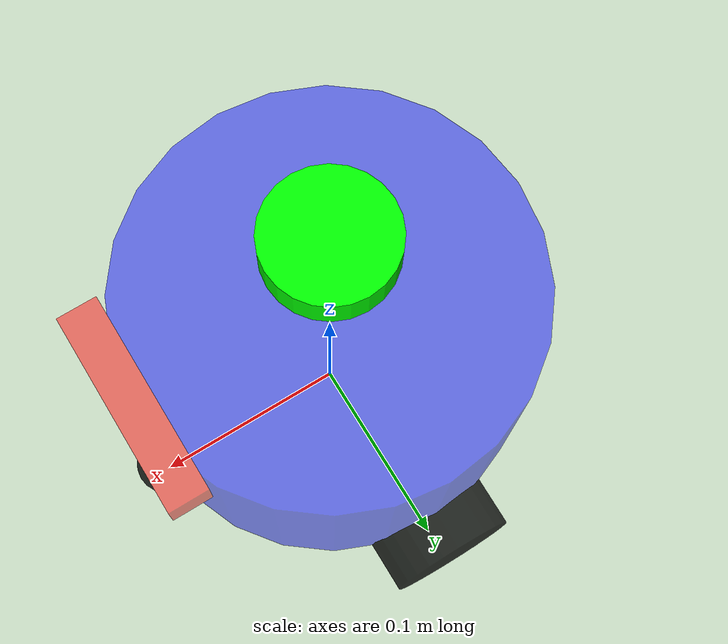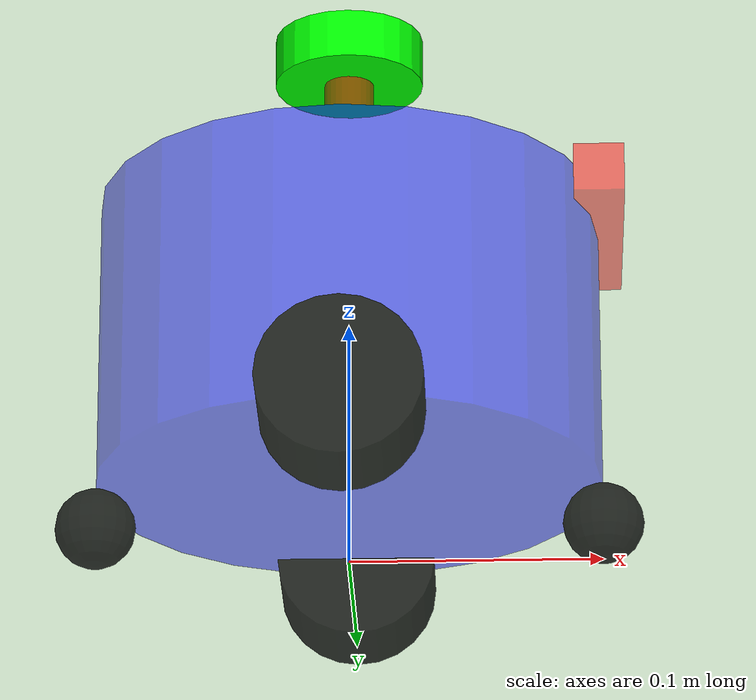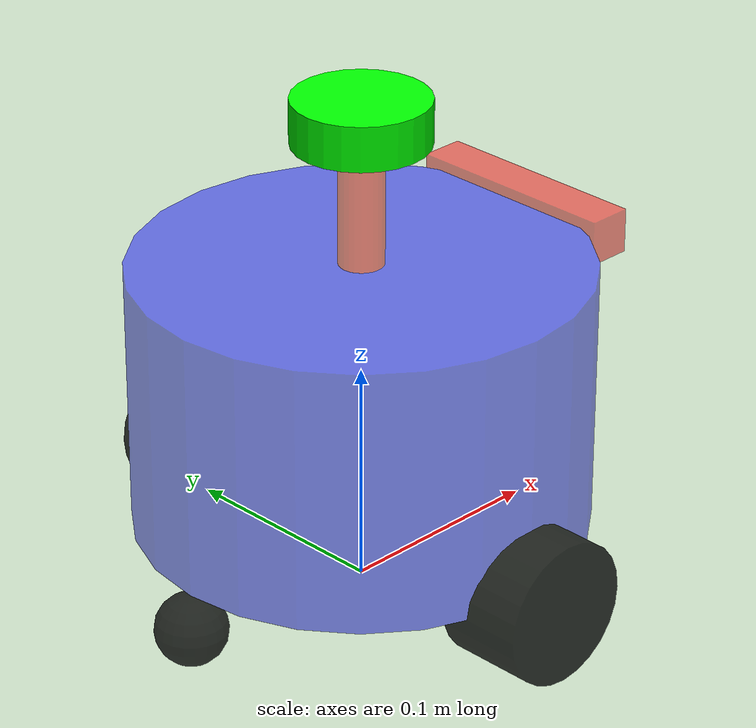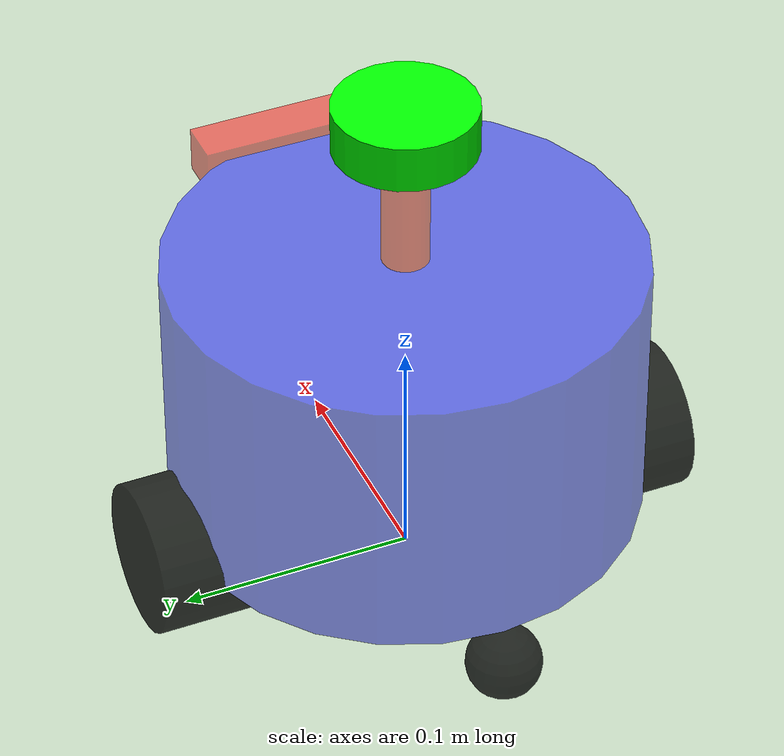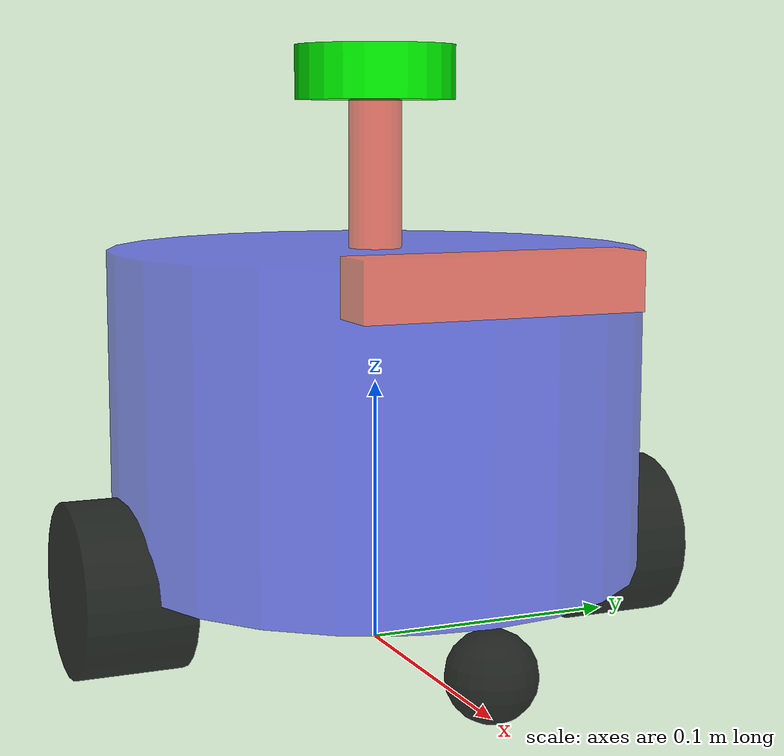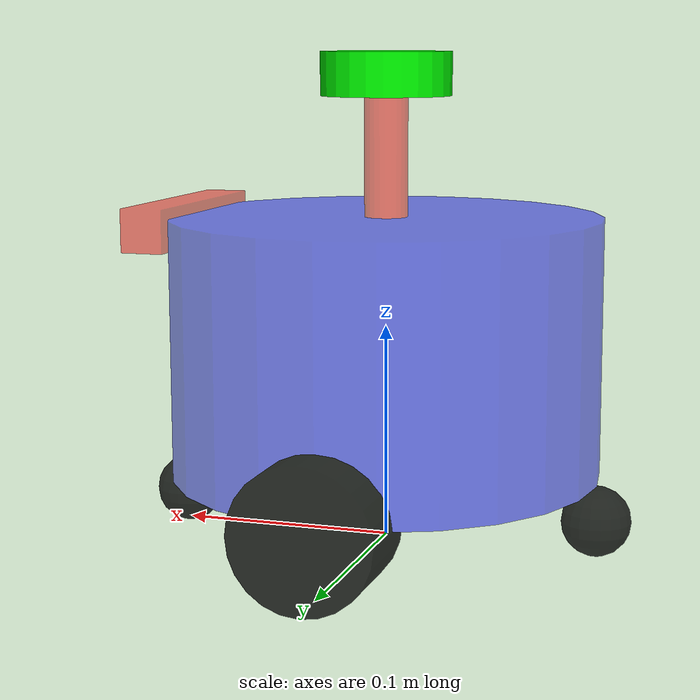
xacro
<?xml version="1.0"?>
<robot xmlns:xacro="http://www.ros.org/wiki/xacro"  name = "my_robot">

  <!--包含身体部分的xacro文件-->
  <xacro:include filename="$(find robo_sim)/urdf/my_robot/base.urdf.xacro"/>
  <!--包含激光传感器部分的xacro文件-->
  <xacro:include filename="$(find robo_sim)/urdf/my_robot/sensor/laser.urdf.xacro"/>
  <!--包含IMU传感器部分的xacro文件-->
  <xacro:include filename="$(find robo_sim)/urdf/my_robot/sensor/imu.urdf.xacro"/>
  <!--包含摄像头传感器部分的xacro文件-->
  <xacro:include filename="$(find robo_sim)/urdf/my_robot/sensor/camera.urdf.xacro"/>
  <!--包含轮子部分的xacro文件-->
  <xacro:include filename="$(find robo_sim)/urdf/my_robot/actuator/wheel.urdf.xacro"/>
  <!--包含万向轮部分的xacro文件-->
  <xacro:include filename="$(find robo_sim)/urdf/my_robot/actuator/caster.urdf.xacro"/>
  <!--包含Gazebo控制插件的xacro文件-->
  <xacro:include filename = "$(find robo_sim)/urdf/plugins/gazebo_control_plugins.xacro"/>
  <!--包含Gazebo传感器插件的xacro文件-->
  <xacro:include filename = "$(find robo_sim)/urdf/plugins/gazebo_sensor_plugins.xacro"/>
  <!--包含ros_control相关的xacro文件-->

  <!--实例化身体部分--><!--调用宏-->
  <xacro:base_xacro length="0.12" radius="0.1" mass="1.0"/>
  <!--实例化激光传感器部分，指定位置参数-->
  <xacro:laser_xacro xyz="0.0 0.0 0.075"/>
  <!--实例化IMU传感器部分，指定位置参数-->
  <xacro:imu_xacro xyz="0.0 0.0 0.02"/>
  <!--实例化摄像头传感器部分，指定位置参数-->
  <xacro:camera_xacro xyz="0.10 0.0 0.055"/>
  <!--实例化轮子部分，指定位置参数-->
  <xacro:wheel_xacro wheel_name="left_wheel" xyz="0.0 0.10 -0.06"/><!--左轮  -0.06-->
  <xacro:wheel_xacro wheel_name="right_wheel" xyz="0.0 -0.10 -0.06"/>
  <!--实例化万向轮部分，指定位置参数-->
  <xacro:caster_xacro caster_name="front_caster" xyz="0.10 0.0 -0.076"/>
  <xacro:caster_xacro caster_name="rear_caster" xyz="-0.10 0.0 -0.076"/>

  <!--实例化Gazebo控制插件 -->
  <xacro:gazebo_control_plugin />

  <!--实例化Gazebo传感器插件 -->
  <xacro:gazebo_sensor_plugin />

  <!--实例化ros_control相关的内容 -->

  </robot>

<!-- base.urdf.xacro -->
<robot xmlns:xacro="http://www.ros.org/wiki/xacro" >

<!--包含惯性计算的xacro文件-->
<xacro:include filename="$(find robo_sim)/urdf/common_inertial.xacro"/>

<!--机器人的身体部分-->
<!-- This is a simple URDF file for a robot with a single link called "base_link". -->
<xacro:macro name = "base_xacro" params = "length radius mass">
<link name = "base_footprint"/>

<link name="base_link">
  <visual>  <!--外观-->
    <!--沿着自己几何中心的偏移和旋转量-->
    <origin xyz="0 0 0" rpy="0 0 0"/>
    <!--定义几何形状-->
    <geometry>
      <cylinder radius="${radius}" length="${length}"/>  <!--圆柱体-->
    </geometry>
    <!--定义材质-->
    <material name="blue">
      <color rgba="0 0 1 0.5"/>  <!--蓝色(rgb)，半透明(0.5)-->
    </material>
  </visual>
  <collision>  <!--碰撞模型-->
    <origin xyz="0 0 0" rpy="0 0 0"/>
    <geometry>
      <cylinder radius="${radius}" length="${length}"/>
    </geometry>
  </collision>
  <!--inertial-->  <!--惯性属性-->  <!--质量--> <!--惯性矩阵-->
  <!--/inertial-->

  <!--使用xacro文件中的惯性计算宏，传入质量、半径和长度参数-->
   <xacro:cylinder_inertia m="${mass}" r="${radius}" h="${length}"/>
</link>

<!--连接两个链接的关节-->
<joint name="base_joint" type="fixed">
  <parent link="base_footprint"/>
  <child link="base_link"/>
  <origin xyz="0 0 ${length/2+0.032-0.001}" rpy="0 0 0"/>
</joint>
<gazebo reference = "base_link">
    <material>
      Gazebo/PurpleGlow
    </material>
</gazebo>
</xacro:macro>

</robot>

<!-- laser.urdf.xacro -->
<robot xmlns:xacro="http://www.ros.org/wiki/xacro" >

<xacro:macro name="laser_xacro" params="xyz">
  <link name="laser_cylinder_link">
    <visual>
      <origin xyz="0 0 0" rpy="0 0 0"/>
      <geometry><cylinder radius="0.01" length="0.10"/></geometry>
      <material name="red"><color rgba="1 0 0 0.5"/></material>
    </visual>
    <collision>
      <origin xyz="0 0 0" rpy="0 0 0"/>
      <geometry><cylinder radius="0.01" length="0.10"/></geometry>
    </collision>
    <xacro:cylinder_inertia m="0.05" r="0.01" h="0.10"/>
  </link>

  <link name="laser_link">
    <visual>
      <origin xyz="0 0 0" rpy="0 0 0"/>
      <geometry><cylinder radius="0.03" length="0.02"/></geometry>
      <material name="green"><color rgba="0 1 0 1.0"/></material>
    </visual>
    <collision>
      <origin xyz="0 0 0" rpy="0 0 0"/>
      <geometry><cylinder radius="0.03" length="0.02"/></geometry>
    </collision>
    <xacro:cylinder_inertia m="0.10" r="0.03" h="0.02"/>
  </link>

  <!-- 激光支撑杆与激光中心固定 -->
  <joint name="laser_cylinder_joint" type="fixed">
    <parent link="base_link"/>
    <child link="laser_cylinder_link"/>
    <origin xyz="${xyz}" rpy="0 0 0"/>
  </joint>

  <joint name="laser_joint" type="fixed">
    <parent link="laser_cylinder_link"/>
    <child link="laser_link"/>
    <origin xyz="0 0 0.05" rpy="0 0 0"/>
  </joint>

  <!-- Gazebo visual -->
  <gazebo reference="laser_link"><material>Gazebo/Black</material></gazebo>
  <gazebo reference="laser_cylinder_link"><material>Gazebo/Black</material></gazebo>
</xacro:macro>

</robot>

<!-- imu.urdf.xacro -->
<robot xmlns:xacro="http://www.ros.org/wiki/xacro" >

<!--包含惯性计算的xacro文件-->
<xacro:include filename="$(find robo_sim)/urdf/common_inertial.xacro"/>
  <!--机器人的IMU部分，惯性测量传感器-->
  <xacro:macro name = "imu_xacro" params = "xyz">
  <link name="imu_link">
    <visual>
      <origin xyz="0 0 0" rpy="0 0 0"/> <!--沿着自己几何中心的偏移和旋转量-->
      <geometry>
        <box size="0.02 0.02 0.02"/>  <!--立方体-->
      </geometry>
      <material name="red">
        <color rgba="1 0 0 0.5"/>  <!--红色(rgb)，半透明(0.5)-->
      </material>
    </visual>
    <collision>
      <origin xyz="0 0 0" rpy="0 0 0"/>
      <geometry>
        <box size="0.02 0.02 0.02"/>
      </geometry>
    </collision>
    <!--使用xacro文件中的惯性计算宏，传入质量和立方体边长参数-->
    <xacro:box_inertia m="0.005" w="0.02" h="0.02" d="0.02"/>
   </link>

   <!--连接两个链接的关节-->
    <joint name="imu_joint" type="fixed">
      <parent link="base_link"/>  <!--父链接-->
      <child link="imu_link"/>  <!--子链接-->
    <origin xyz="${xyz}" rpy="0 0 0"/>  <!--关节位置-->
    </joint>
</xacro:macro>

</robot>

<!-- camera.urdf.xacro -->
<robot xmlns:xacro="http://www.ros.org/wiki/xacro" >

<!--包含惯性计算的xacro文件-->
<xacro:include filename="$(find robo_sim)/urdf/common_inertial.xacro"/>

  <!--机器人的camera部分-->
  <xacro:macro name = "camera_xacro" params = "xyz">
  <link name="camera_link">
    <visual>
      <origin xyz="0 0 0" rpy="0 0 0"/> <!--沿着自己几何中心的偏移和旋转量-->
      <geometry>
        <box size="0.02 0.10 0.02"/>  <!--立方体-->
      </geometry>
      <material name="red">
        <color rgba="1 0 0 0.5"/>  <!--红色(rgb)，半透明(0.5)-->
      </material>
    </visual>
    <collision>
      <origin xyz="0 0 0" rpy="0 0 0"/>
      <geometry>
        <box size="0.02 0.10 0.02"/>
      </geometry>
    </collision>
    <!--使用xacro文件中的惯性计算宏，传入质量和立方体边长参数-->
    <xacro:box_inertia m="0.1" w="0.02" h="0.10" d="0.02"/>

   </link>

<link name="camera_optical_link"></link>

   <!--连接两个链接的关节-->
    <joint name="camera_joint" type="fixed">
      <parent link="base_link"/>  <!--父链接-->
      <child link="camera_link"/>  <!--子链接-->
    <origin xyz="${xyz}" rpy="0 0 0"/>  <!--关节位置-->
    </joint>

    <joint name="camera_optical_joint" type="fixed">
      <parent link="camera_link"/>
      <child link="camera_optical_link"/>
      <origin xyz="0 0 0" rpy="${-pi/2} 0 ${-pi/2}"/>  <!--相对于camera_link的偏移和旋转，调整为相机光轴朝前-->

    </joint>

    <gazebo reference = "camera_link">
    <material>
      Gazebo/Green
    </material>
    </gazebo>
</xacro:macro>

</robot>

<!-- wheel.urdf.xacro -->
<robot xmlns:xacro="http://www.ros.org/wiki/xacro" >

<!--包含惯性计算的xacro文件-->
<xacro:include filename="$(find robo_sim)/urdf/common_inertial.xacro"/>
  <!--机器人的轮子部分-->
  <xacro:macro name = "wheel_xacro" params = "wheel_name xyz">
  <link name="${wheel_name}_link">
    <visual>
      <origin xyz="0 0 0" rpy="1.57079 0 0"/> <!--沿着自己几何中心的偏移和旋转量-->
      <geometry>
        <cylinder radius="0.032" length="0.04"/>  <!--圆柱体-->
      </geometry>
      <material name="black">
        <color rgba="0 0 0 0.8"/>  <!--黑色(rgb)，半透明(0.8)-->
      </material>
    </visual>
    <collision>
      <origin xyz="0 0 0" rpy="1.57079 0 0"/>
      <geometry>
        <cylinder radius="0.032" length="0.04"/>
      </geometry>
    </collision>
     <!--使用xacro文件中的惯性计算宏，传入质量和半径参数-->
    <xacro:cylinder_inertia m="0.05" r="0.032" h="0.04"/>

   </link>

   <!--连接两个链接的关节-->
    <joint name="${wheel_name}_joint" type="continuous">
      <parent link="base_link"/>  <!--父链接 以前base_link-->
      <child link="${wheel_name}_link"/>  <!--子链接-->
    <origin xyz="${xyz}" rpy="0 0 0"/>  <!--关节位置-->
        <axis xyz="0 1 0"/>  <!--旋转轴y,绕y轴旋转-->
    </joint>

    <gazebo reference = "${wheel_name}_link">
        <mu1 value="20"/>  <!--切向摩擦系数1-->
        <mu2 value="20"/>  <!--法向摩擦系数2-->
        <kp value="1000000000"/>  <!--接触点弹性系数-->
        <kd value="1.000"/>  <!--接触点阻尼系数-->
        <material>Gazebo/Black</material>  <!--材质-->
    </gazebo>
</xacro:macro>

</robot>

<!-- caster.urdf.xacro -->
<robot xmlns:xacro="http://www.ros.org/wiki/xacro" >

  <!--包含惯性计算的xacro文件-->
 <xacro:include filename="$(find robo_sim)/urdf/common_inertial.xacro"/>
  <!--机器人的万向轮子部分-->
  <xacro:macro name = "caster_xacro" params = "caster_name xyz">
  <link name="${caster_name}_link">
    <visual>
      <origin xyz="0 0 0" rpy="0 0 0"/> <!--沿着自己几何中心的偏移和旋转量-->
      <geometry>
        <sphere radius="0.016"/>  <!--球体-->
      </geometry>
      <material name="black">
        <color rgba="0 0 0 0.8"/>  <!--黑色(rgb)，半透明(0.8)-->
      </material>
    </visual>
    <collision>
      <origin xyz="0 0 0" rpy="0 0 0"/>
      <geometry>
        <sphere radius="0.016"/>
      </geometry>
    </collision>

    <!--使用xacro文件中的惯性计算宏，传入质量和半径参数-->
    <xacro:sphere_inertia m="0.05" r="0.016"/>
   </link>

   <!--连接两个链接的关节-->
    <joint name="${caster_name}_joint" type="fixed">
      <parent link="base_link"/>  <!--父链接-->
      <child link="${caster_name}_link"/>  <!--子链接-->
      <origin xyz="${xyz}" rpy="0 0 0"/>  <!--关节位置-->
    </joint>

    <gazebo reference = "${caster_name}_link">
        <mu1 value="0"/>  <!--切向摩擦系数1-->
        <mu2 value="0"/>  <!--法向摩擦系数2-->
        <kp value="1000000000"/>  <!--接触点弹性系数-->
        <kd value="1.000"/>  <!--接触点阻尼系数-->
        <material>Gazebo/Black</material>  <!--材质-->
    </gazebo>

</xacro:macro>

</robot>
